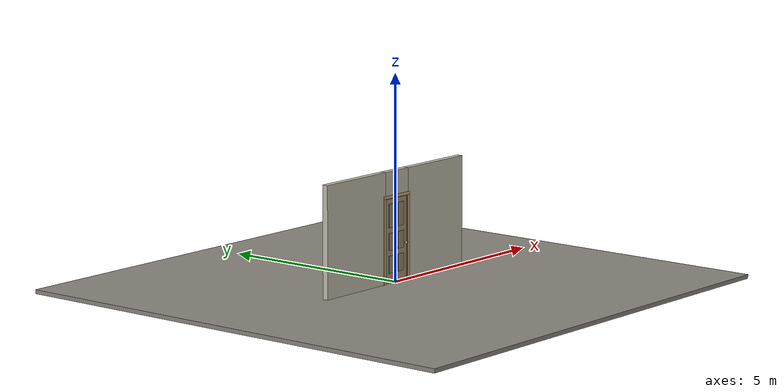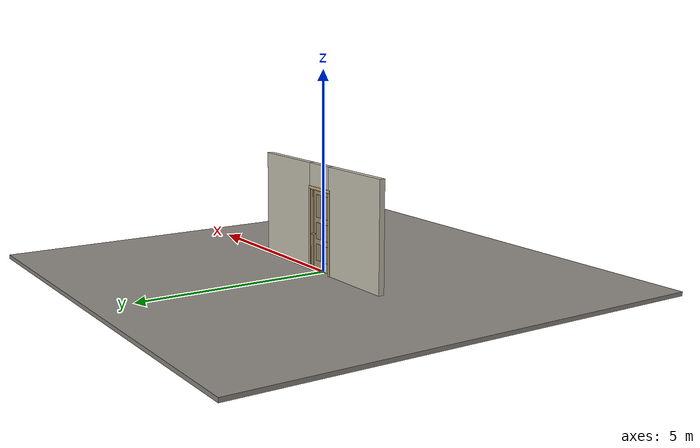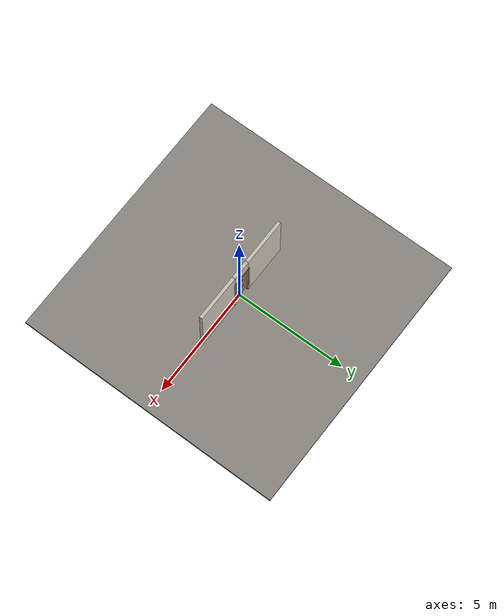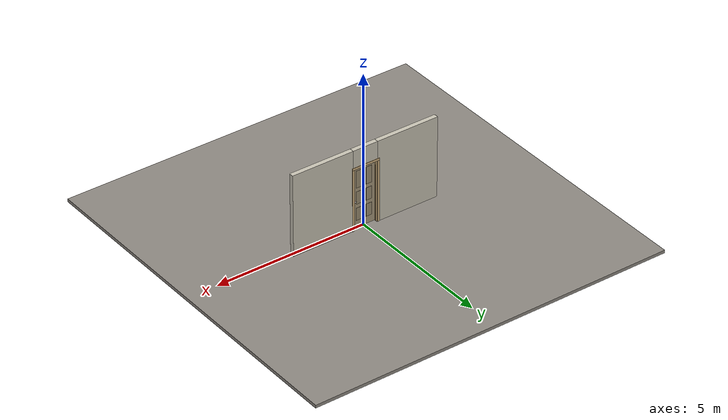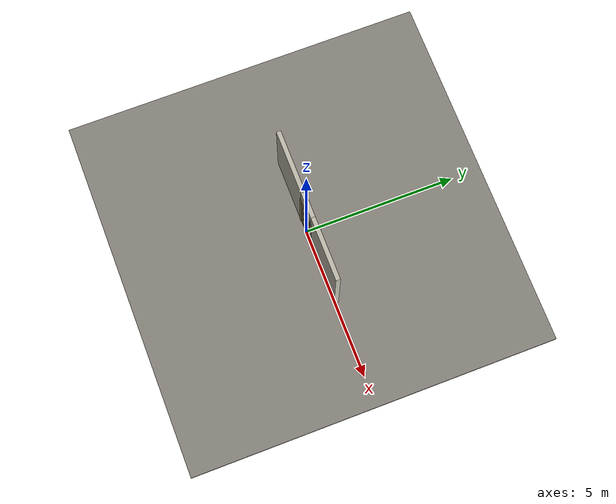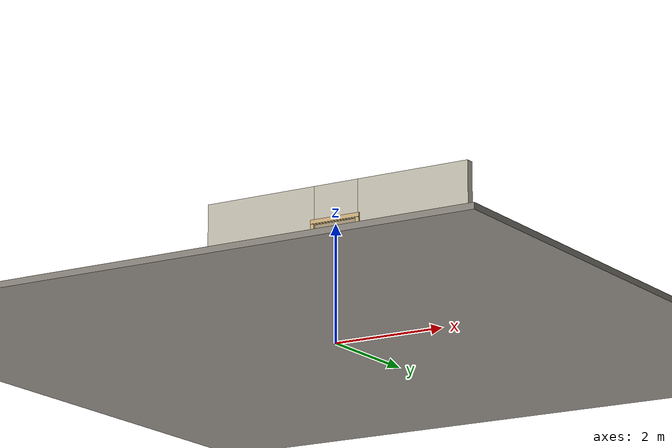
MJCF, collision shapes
<?xml version="1.0" ?>
<mujoco model="db0278_swing_single_full">
  <compiler angle="radian" meshdir="../../hardware" texturedir="../../textures" autolimits="true" inertiafromgeom="false"/>
  <option timestep="0.002" integrator="implicitfast" cone="elliptic" impratio="10" noslip_iterations="3">
    <flag multiccd="enable"/>
  </option>
  <size memory="16M"/>
  <default>
    <geom condim="4" solref="0.005 1" solimp="0.95 0.99 0.001"/>
    <joint solreflimit="0.005 1" solimplimit="0.95 0.99 0.001"/>
    <tendon solreflimit="0.005 1"/>
    <equality solref="0.002 1"/>
  </default>
  <visual>
    <headlight ambient="0.4 0.4 0.4" diffuse="0.7 0.7 0.7" specular="0.2 0.2 0.2"/>
    <quality shadowsize="4096"/>
    <map znear="0.01" zfar="60"/>
  </visual>
  <asset>
    <mesh name="hinge_2af0f4d6ca" file="hinge_2af0f4d6ca.obj"/>
    <mesh name="hinge_jamb_c0c0a62ada" file="hinge_jamb_c0c0a62ada.obj"/>
    <mesh name="knob_d6523d5571" file="knob_d6523d5571.obj"/>
    <material name="mat_floor" rgba="0.55 0.53 0.5 1" specular="0.2" shininess="0.15" reflectance="0"/>
    <material name="mat_wall" rgba="0.78 0.76 0.7 1" specular="0.2" shininess="0.1" reflectance="0"/>
    <material name="mat_leaf" rgba="0.65 0.59 0.475 1" specular="0.2" shininess="0.5" reflectance="0"/>
    <material name="mat_leaf_panel" rgba="0.598 0.543 0.437 1" specular="0.2" shininess="0.5" reflectance="0"/>
    <material name="mat_hinge" rgba="0.65 0.66 0.68 1" specular="0.74" shininess="0.5" reflectance="0.36"/>
    <material name="mat_op_pvc" rgba="0.92 0.92 0.9 1" specular="0.2" shininess="0.6" reflectance="0"/>
    <material name="mat_trim" rgba="0.85 0.66 0.3 1" specular="0.8" shininess="0.75" reflectance="0.4"/>
    <material name="mat_bolt" rgba="0.85 0.66 0.3 1" specular="0.8" shininess="0.75" reflectance="0.4"/>
    <material name="mat_frame" rgba="0.82 0.7 0.5 1" specular="0.2" shininess="0.45" reflectance="0"/>
    <material name="mat_seal" rgba="0.1 0.1 0.1 1" specular="0.2" shininess="0.1" reflectance="0"/>
    <texture name="skybox" type="skybox" builtin="gradient" rgb1="0.6 0.7 0.85" rgb2="0.9 0.92 0.95" width="256" height="256"/>
  </asset>
  <worldbody>
    <light name="sun" pos="1.5 -2.5 4" dir="-0.3 0.5 -0.8" directional="true" diffuse="0.8 0.8 0.8" specular="0.3 0.3 0.3" castshadow="true"/>
    <light name="fill" pos="-1.5 2.5 3" dir="0.3 -0.5 -0.7" directional="true" diffuse="0.35 0.35 0.4" castshadow="false"/>
    <camera name="robot_view" pos="0 -2.498687 1.734312" xyaxes="1 0 0 0 0.26963 0.962964" fovy="52"/>
    <camera name="far_view" pos="0 2.585687 1.734312" xyaxes="-1 0 0 0 -0.26963 0.962964" fovy="52"/>
    <camera name="iso" pos="1.932062 -2.091938 2.141063" xyaxes="0.741536 0.670913 0 -0.242917 0.268487 0.932151" fovy="46"/>
    <camera name="detail_handle" pos="0.5 -0.8685 1.194" xyaxes="0.97561 0.219512 0 -0.070934 0.315262 0.94635" fovy="38"/>
    <geom name="floor" type="box" size="6 6 0.05" pos="0 0 -0.05" material="mat_floor" group="0" contype="1" conaffinity="1" friction="0.8 0.005 0.0001" density="2400"/>
    <geom name="wall_left" type="box" size="1.048 0.0725 1.35" pos="-1.452 0.0435 1.35" material="mat_wall" group="0" contype="1" conaffinity="1" friction="0.6 0.005 0.0001" density="800"/>
    <geom name="wall_right" type="box" size="1.033 0.0725 1.35" pos="1.467 0.0435 1.35" material="mat_wall" group="0" contype="1" conaffinity="1" friction="0.6 0.005 0.0001" density="800"/>
    <geom name="wall_header" type="box" size="0.419 0.0725 0.303" pos="0.015 0.0435 2.397" material="mat_wall" group="0" contype="1" conaffinity="1" friction="0.6 0.005 0.0001" density="800"/>
    <geom name="hinge_0_jamb" type="mesh" mesh="hinge_jamb_c0c0a62ada" pos="-0.382 -0.029 0.259" material="mat_hinge" group="1" contype="0" conaffinity="0" density="7850"/>
    <geom name="hinge_1_jamb" type="mesh" mesh="hinge_jamb_c0c0a62ada" pos="-0.382 -0.029 1.025" material="mat_hinge" group="1" contype="0" conaffinity="0" density="7850"/>
    <geom name="hinge_2_jamb" type="mesh" mesh="hinge_jamb_c0c0a62ada" pos="-0.382 -0.029 1.861" material="mat_hinge" group="1" contype="0" conaffinity="0" density="7850"/>
    <geom name="jamb_hinge" type="box" size="0.0095 0.0725 1.0225" pos="-0.3945 0.0435 1.0225" material="mat_frame" group="0" contype="1" conaffinity="1" friction="0.6 0.005 0.0001" density="400"/>
    <geom name="strike_914_wall_n" type="box" size="0.0245 0.054075 0.0167" pos="0.4095 0.061925 0.914" material="mat_frame" group="0" contype="1" conaffinity="1" friction="0.6 0.005 0.0001" density="400"/>
    <geom name="strike_914_wall_p" type="box" size="0.0245 0.008 0.0167" pos="0.4095 -0.01585 0.914" material="mat_frame" group="0" contype="1" conaffinity="1" friction="0.6 0.005 0.0001" density="400"/>
    <geom name="strike_914_ramp" type="box" size="0.0245 0.01649 0.0167" pos="0.414136 -0.028673 0.914" quat="0.977148 0 0 0.212558" material="mat_frame" group="0" contype="1" conaffinity="1" friction="0.12 0.005 0.0001" density="400"/>
    <geom name="strike_914_back" type="box" size="0.01615 0.00785 0.0167" pos="0.41785 0 0.914" material="mat_frame" group="0" contype="1" conaffinity="1" friction="0.6 0.005 0.0001" density="400"/>
    <geom name="jamb_strike_0" type="box" size="0.0245 0.0725 0.44865" pos="0.4095 0.0435 0.44865" material="mat_frame" group="0" contype="1" conaffinity="1" friction="0.6 0.005 0.0001" density="400"/>
    <geom name="jamb_strike_1" type="box" size="0.0245 0.0725 0.55715" pos="0.4095 0.0435 1.48785" material="mat_frame" group="0" contype="1" conaffinity="1" friction="0.6 0.005 0.0001" density="400"/>
    <geom name="jamb_head" type="box" size="0.419 0.0725 0.0095" pos="0.015 0.0435 2.0545" material="mat_frame" group="0" contype="1" conaffinity="1" friction="0.6 0.005 0.0001" density="400"/>
    <geom name="head_stud" type="box" size="0.419 0.0725 0.015" pos="0.015 0.0435 2.079" material="mat_wall" group="0" contype="1" conaffinity="1" friction="0.6 0.005 0.0001" density="500"/>
    <geom name="stop_hinge" type="box" size="0.0055 0.016 1.0225" pos="-0.3795 0.0385 1.0225" material="mat_frame" group="0" contype="1" conaffinity="1" friction="0.6 0.005 0.0001" density="400"/>
    <geom name="stop_strike" type="box" size="0.0055 0.016 1.0225" pos="0.3795 0.0385 1.0225" material="mat_frame" group="0" contype="1" conaffinity="1" friction="0.6 0.005 0.0001" density="400"/>
    <geom name="stop_head" type="box" size="0.385 0.016 0.0055" pos="0 0.0385 2.0395" material="mat_frame" group="0" contype="1" conaffinity="1" friction="0.6 0.005 0.0001" density="400"/>
    <geom name="seal_hinge" type="box" size="0.004 0.002 1.0225" pos="-0.382 0.024 1.0225" material="mat_seal" group="1" contype="0" conaffinity="0" density="1100"/>
    <geom name="seal_strike" type="box" size="0.004 0.002 1.0225" pos="0.382 0.024 1.0225" material="mat_seal" group="1" contype="0" conaffinity="0" density="1100"/>
    <geom name="seal_head" type="box" size="0.365 0.002 0.008" pos="0 0.024 2.033" material="mat_seal" group="1" contype="0" conaffinity="0" density="1100"/>
    <geom name="casing_l_n" type="box" size="0.035 0.008 1.032" pos="-0.434 -0.037 1.0225" material="mat_frame" group="2" contype="0" conaffinity="0" density="400"/>
    <geom name="casing_r_n" type="box" size="0.035 0.008 1.032" pos="0.434 -0.037 1.0225" material="mat_frame" group="2" contype="0" conaffinity="0" density="400"/>
    <geom name="casing_h_n" type="box" size="0.469 0.008 0.035" pos="0 -0.037 2.094" material="mat_frame" group="2" contype="0" conaffinity="0" density="400"/>
    <geom name="casing_l_p" type="box" size="0.035 0.008 1.032" pos="-0.434 0.124 1.0225" material="mat_frame" group="2" contype="0" conaffinity="0" density="400"/>
    <geom name="casing_r_p" type="box" size="0.035 0.008 1.032" pos="0.434 0.124 1.0225" material="mat_frame" group="2" contype="0" conaffinity="0" density="400"/>
    <geom name="casing_h_p" type="box" size="0.469 0.008 0.035" pos="0 0.124 2.094" material="mat_frame" group="2" contype="0" conaffinity="0" density="400"/>
    <site name="approach_point" pos="0 -1.5 0" quat="1 0 0 0" size="0.05" rgba="0.2 0.9 0.2 0.5" group="4"/>
    <site name="goal_point" pos="0 1.5 0" quat="1 0 0 0" size="0.05" rgba="0.2 0.9 0.2 0.5" group="4"/>
    <site name="door_plane_center" pos="0 0 1.0225" quat="1 0 0 0" size="0.02" rgba="0.2 0.9 0.2 0.5" group="4"/>
    <body name="leaf" pos="-0.385 0 0">
      <inertial pos="0.380442 -0.000149 1.025204" mass="47.690227" quat="-0.499799 0.500365 -0.49963 -0.500206" diaginertia="2.36056048 16.451331377 18.796204673"/>
      <joint name="leaf_hinge" type="hinge" axis="0 0 -1" pos="0.003 -0.029 0" limited="true" range="0 1.745329" solreflimit="0.02 1" damping="0.173726" frictionloss="1.57091" armature="0.02"/>
      <geom name="leaf_slab" type="box" size="0.381 0.022 1.016" pos="0.384 0 1.025" material="mat_leaf" group="0" contype="1" conaffinity="1" friction="0.35 0.005 0.0001" density="1"/>
      <geom name="leaf_panel_0_n" type="box" size="0.103 0.003 0.209032" pos="0.216 -0.025 0.461552" material="mat_leaf_panel" group="1" contype="0" conaffinity="0" density="1"/>
      <geom name="leaf_panel_0_p" type="box" size="0.103 0.003 0.209032" pos="0.216 0.025 0.461552" material="mat_leaf_panel" group="1" contype="0" conaffinity="0" density="1"/>
      <geom name="leaf_panel_1_n" type="box" size="0.103 0.003 0.209032" pos="0.552 -0.025 0.461552" material="mat_leaf_panel" group="1" contype="0" conaffinity="0" density="1"/>
      <geom name="leaf_panel_1_p" type="box" size="0.103 0.003 0.209032" pos="0.552 0.025 0.461552" material="mat_leaf_panel" group="1" contype="0" conaffinity="0" density="1"/>
      <geom name="leaf_panel_2_n" type="box" size="0.103 0.003 0.209032" pos="0.216 -0.025 1.009616" material="mat_leaf_panel" group="1" contype="0" conaffinity="0" density="1"/>
      <geom name="leaf_panel_2_p" type="box" size="0.103 0.003 0.209032" pos="0.216 0.025 1.009616" material="mat_leaf_panel" group="1" contype="0" conaffinity="0" density="1"/>
      <geom name="leaf_panel_3_n" type="box" size="0.103 0.003 0.209032" pos="0.552 -0.025 1.009616" material="mat_leaf_panel" group="1" contype="0" conaffinity="0" density="1"/>
      <geom name="leaf_panel_3_p" type="box" size="0.103 0.003 0.209032" pos="0.552 0.025 1.009616" material="mat_leaf_panel" group="1" contype="0" conaffinity="0" density="1"/>
      <geom name="leaf_panel_4_n" type="box" size="0.103 0.003 0.285376" pos="0.216 -0.025 1.634024" material="mat_leaf_panel" group="1" contype="0" conaffinity="0" density="1"/>
      <geom name="leaf_panel_4_p" type="box" size="0.103 0.003 0.285376" pos="0.216 0.025 1.634024" material="mat_leaf_panel" group="1" contype="0" conaffinity="0" density="1"/>
      <geom name="leaf_panel_5_n" type="box" size="0.103 0.003 0.285376" pos="0.552 -0.025 1.634024" material="mat_leaf_panel" group="1" contype="0" conaffinity="0" density="1"/>
      <geom name="leaf_panel_5_p" type="box" size="0.103 0.003 0.285376" pos="0.552 0.025 1.634024" material="mat_leaf_panel" group="1" contype="0" conaffinity="0" density="1"/>
      <geom name="hinge_0" type="mesh" mesh="hinge_2af0f4d6ca" pos="0.003 -0.029 0.259" material="mat_hinge" group="1" contype="0" conaffinity="0" density="7850"/>
      <geom name="hinge_1" type="mesh" mesh="hinge_2af0f4d6ca" pos="0.003 -0.029 1.025" material="mat_hinge" group="1" contype="0" conaffinity="0" density="7850"/>
      <geom name="hinge_2" type="mesh" mesh="hinge_2af0f4d6ca" pos="0.003 -0.029 1.861" material="mat_hinge" group="1" contype="0" conaffinity="0" density="7850"/>
      <geom name="leaf_latch_bolt_faceplate" type="box" size="0.0006 0.01235 0.0267" pos="0.7644 0 0.914" material="mat_bolt" group="1" contype="0" conaffinity="0" density="8500"/>
      <site name="leaf_edge_mid" pos="0.765 0 1.016" quat="1 0 0 0" size="0.02" rgba="0.2 0.9 0.2 0.5" group="4"/>
      <body name="leaf_handle" pos="0.705 0 0.914">
        <inertial pos="0 0 0" mass="3.583139" quat="0.5 0.5 0.5 0.5" diaginertia="0.00357977 0.014614965 0.014614965"/>
        <joint name="leaf_handle_hinge" type="hinge" axis="0 -1 0" limited="true" range="0 0.87" damping="0.164802" frictionloss="0.039" stiffness="0.5" springref="-0.5" armature="0.01"/>
        <geom name="leaf_handle_spindle" type="cylinder" size="0.006 0.03" pos="0 0 0" quat="0.707107 -0.707107 0 0" material="mat_op_pvc" group="1" contype="0" conaffinity="0" density="7850"/>
        <geom name="leaf_handle_knob_n" type="mesh" mesh="knob_d6523d5571" pos="0 -0.022 0" quat="0.707107 0.707107 0 0" material="mat_op_pvc" group="1" contype="0" conaffinity="0" density="3000"/>
        <geom name="leaf_handle_knob_col_n" type="sphere" size="0.0243" pos="0 -0.0685 0" material="mat_op_pvc" group="0" contype="1" conaffinity="1" friction="0.15 0.01 0.0001" density="3000"/>
        <geom name="leaf_handle_knob_neck_n" type="cylinder" size="0.011 0.012" pos="0 -0.034 0" quat="0.707107 -0.707107 0 0" material="mat_op_pvc" group="3" contype="1" conaffinity="1" rgba="0.8 0.3 0.3 0.25" friction="0.6 0.005 0.0001" density="3000"/>
        <geom name="leaf_handle_knob_p" type="mesh" mesh="knob_d6523d5571" pos="0 0.022 0" quat="-0.707107 0.707107 0 0" material="mat_op_pvc" group="1" contype="0" conaffinity="0" density="3000"/>
        <geom name="leaf_handle_knob_col_p" type="sphere" size="0.0243" pos="0 0.0685 0" material="mat_op_pvc" group="0" contype="1" conaffinity="1" friction="0.15 0.01 0.0001" density="3000"/>
        <geom name="leaf_handle_knob_neck_p" type="cylinder" size="0.011 0.012" pos="0 0.034 0" quat="0.707107 -0.707107 0 0" material="mat_op_pvc" group="3" contype="1" conaffinity="1" rgba="0.8 0.3 0.3 0.25" friction="0.6 0.005 0.0001" density="3000"/>
        <site name="leaf_handle_grip_n" pos="0 -0.0685 0" quat="1 0 0 0" size="0.012" rgba="0.2 0.9 0.2 0.5" group="4"/>
        <site name="leaf_handle_grip_p" pos="0 0.0685 0" quat="1 0 0 0" size="0.012" rgba="0.2 0.9 0.2 0.5" group="4"/>
      </body>
      <body name="leaf_latch_bolt" pos="0.765 0 0.914">
        <inertial pos="-0.00865 0 0" mass="0.041419" quat="0.92388 -0.382683 0 0" diaginertia="0.000000798 0.000005598 0.000005598"/>
        <joint name="leaf_latch_bolt_slide" type="slide" axis="-1 0 0" limited="true" range="0 0.0127" damping="2" frictionloss="0.3" stiffness="300" springref="-0.008333" armature="0.1"/>
        <geom name="leaf_latch_bolt_capsule" type="capsule" size="0.00635 0.015" pos="-0.00865 0 0" quat="0.707107 0 0.707107 0" material="mat_bolt" group="0" contype="1" conaffinity="1" friction="0.2 0.005 0.0001" density="8500"/>
      </body>
    </body>
  </worldbody>
  <tendon>
    <fixed name="leaf_latch_bolt_coupling" limited="true" range="0 10">
      <joint joint="leaf_latch_bolt_slide" coef="1"/>
      <joint joint="leaf_handle_hinge" coef="-0.015679"/>
    </fixed>
  </tendon>
  <sensor>
    <jointpos name="leaf_hinge_pos" joint="leaf_hinge"/>
    <jointvel name="leaf_hinge_vel" joint="leaf_hinge"/>
    <jointpos name="leaf_handle_hinge_pos" joint="leaf_handle_hinge"/>
    <jointvel name="leaf_handle_hinge_vel" joint="leaf_handle_hinge"/>
    <jointpos name="leaf_latch_bolt_slide_pos" joint="leaf_latch_bolt_slide"/>
    <jointvel name="leaf_latch_bolt_slide_vel" joint="leaf_latch_bolt_slide"/>
  </sensor>
</mujoco>
